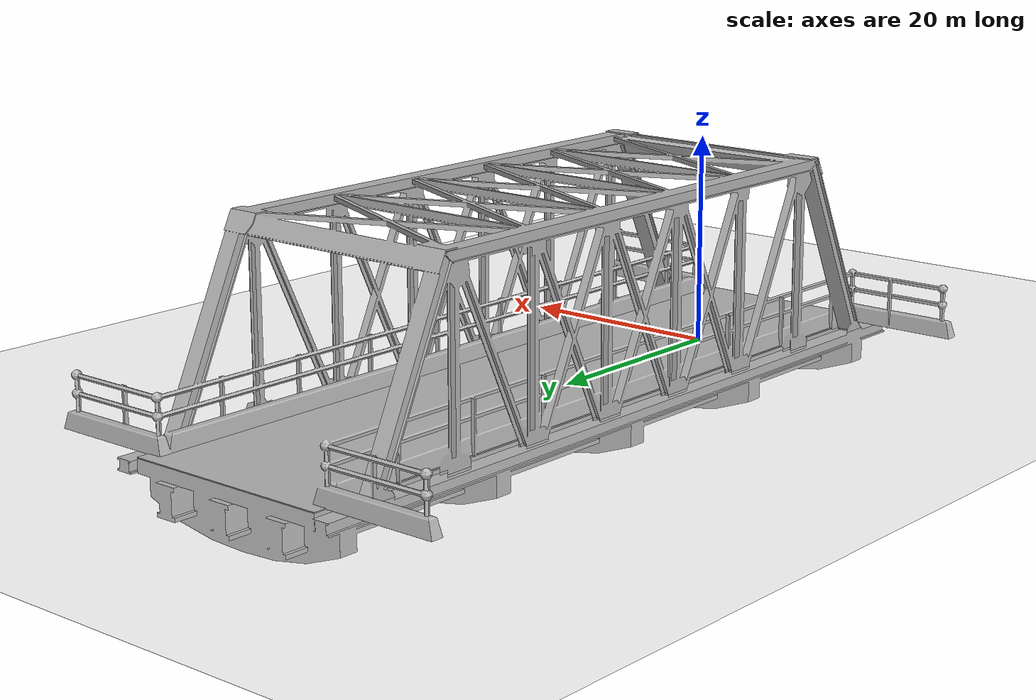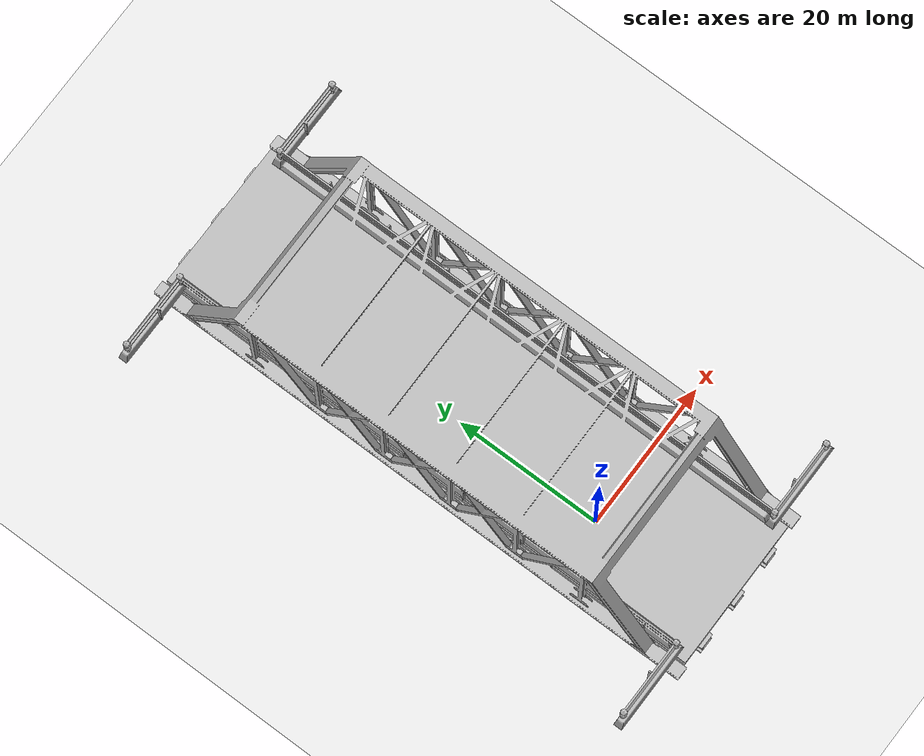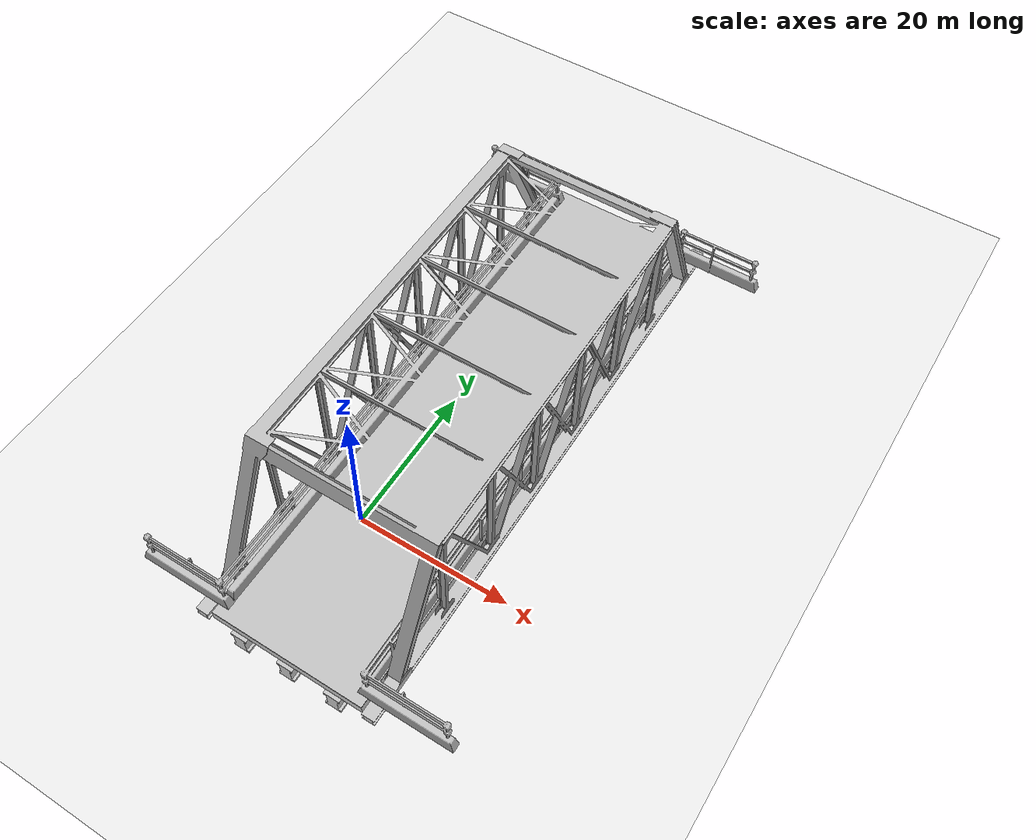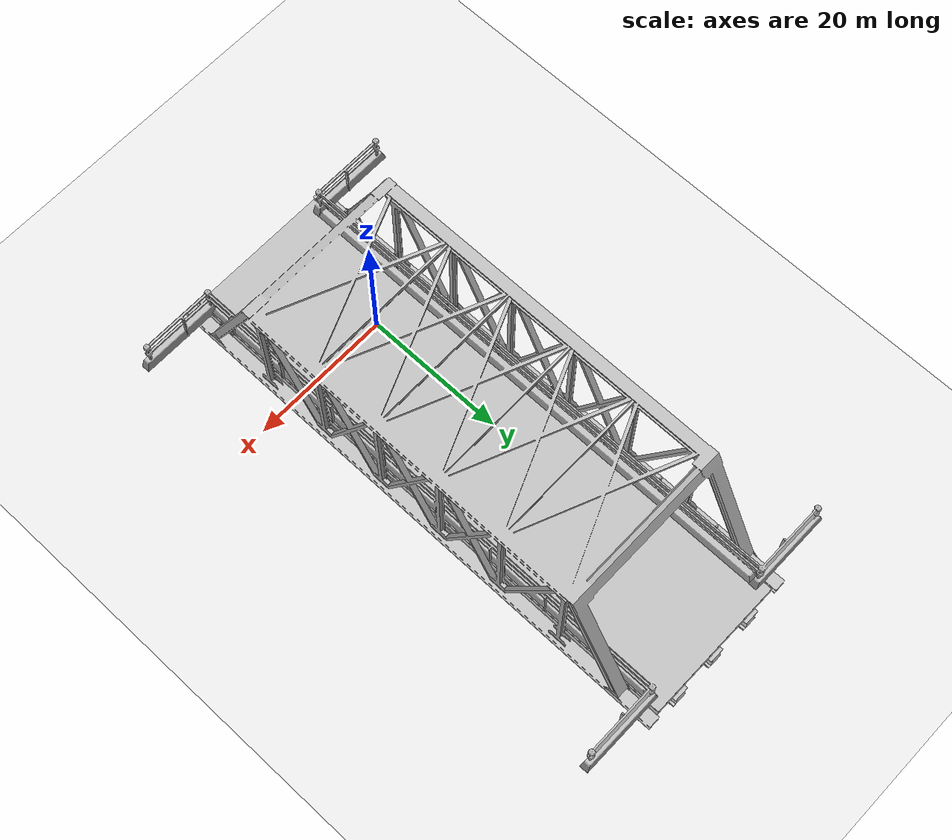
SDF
<?xml version="1.0" ?>
<sdf version="1.6">
  <world name="default">
    <scene>
      <sky>
        <clouds>
          <speed>12</speed>
        </clouds>
      </sky>
    </scene>
    <!-- A global light source -->
    <include>
      <uri>model://sun</uri>
    </include>
    <!-- A ground plane -->
    <include>
      <uri>model://ground_plane</uri>
    </include>
    <!-- Bridge -->
    <include>
    <uri>model://truss_bridge</uri>
    <pose>3.0 20.0 -1.5 0.0 0.0 0.0</pose>
    </include>
  </world>
</sdf>

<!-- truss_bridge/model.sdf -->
<sdf version="1.6">
  <model name="truss_bridge">
    <static>true</static>
    <link name="link">
      <collision name="collision">
        <geometry>
          <mesh>
            <uri>model://truss_bridge/meshes/truss_bridge.dae</uri>
            <scale>5 5 5</scale>
          </mesh>
        </geometry>
      </collision>
      <visual name="visual">
        <geometry>
          <mesh>
            <uri>model://truss_bridge/meshes/truss_bridge.dae</uri>
            <scale>5 5 5</scale>
          </mesh>
        </geometry>
      </visual>
    </link>
  </model>
</sdf>
